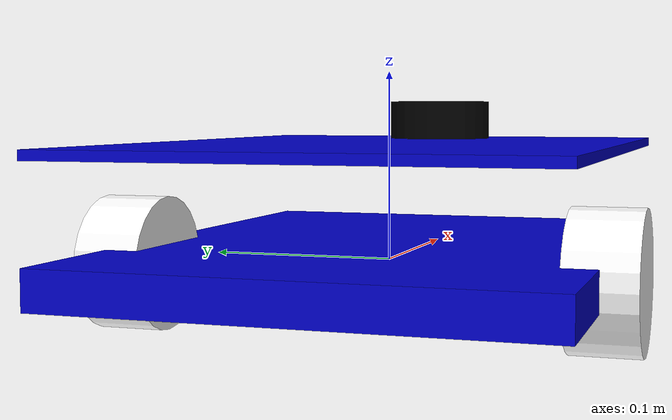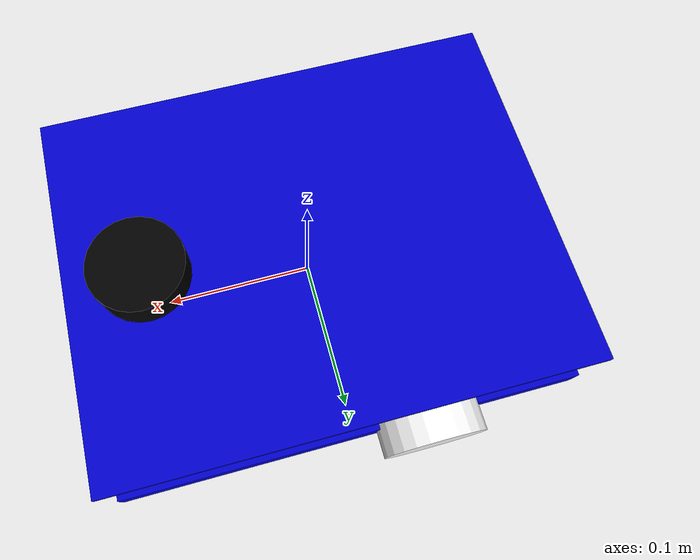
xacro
<?xml version="1.0"?>
<robot name="lamb" xmlns:xacro="http://ros.org/wiki/xacro" >

 <material name="blue">
 	<color rgba="0 0 0.8 1"/>
 </material>

 <material name="white">
	 <color rgba="1 1 1 1"/>
 </material>

 <xacro:property name="m" value="2" />
 <xacro:property name="l1" value="0.31" />
 <xacro:property name="b1" value="0.245" />
 <xacro:property name="h1" value="0.02" />

 <xacro:property name="r2" value="0.017" />

	<link name="base_link">
		<visual>
			<origin rpy="0 0 0" xyz="0 0 0"/>
			<geometry>
				<box size="${l1} ${b1} ${h1}"/>
			</geometry>
			<material name="blue"/>

		</visual>

		<visual>
			<origin rpy="0 0 0" xyz="0 0 0.06"/>
			<geometry>
				<box size="${l1} ${b1} 0.005"/>
			</geometry>
			<material name="blue"/>

		</visual>

		<collision name="collision_chassis">
			<geometry>
				<box size="${l1} ${b1} ${h1}"/>
			</geometry>
		</collision>

		<inertial>
			<mass value="${m}"/>
			<origin rpy="0 0 0" xyz="0 0 0"/>
			<inertia ixx="${m*h1*b1/12.0}" ixy="0" ixz="0" iyy="${m*l1*h1/12.0}" iyz="0" izz="${m*l1*b1/12.0}"/>
		</inertial>

		<!-- caster wheel-->
		<visual>
			<origin rpy="0 0 0" xyz="${l1/2-r2} 0 -${r2}"/>
			<geometry>
				<sphere radius="${r2}"/>
			</geometry>
		</visual>

		<collision name="caster_front_collision">
			<origin rpy="0 0 0" xyz="${l1/2-r2} 0 -${r2}"/>
			<geometry>
				<sphere radius="${r2}"/>
			</geometry>
			<surface>
				<friction>
					<ode>
						<mu>0</mu>
						<mu2>0</mu2>
						<slip1>1.0</slip1>
						<slip2>1.0</slip2>
					</ode>
				</friction>
			</surface>
		</collision>
	</link>

 <xacro:property name="l3" value="0.035" />
 <xacro:property name="r3" value="0.035" />
 <xacro:property name="m3" value="0.2" />

	<link name="right_wheel">
		<visual>
			<origin rpy="0 1.5707 1.5707" xyz="0 0 0"/>
			<geometry>
					<cylinder radius="${r3}" length="${l3}" />
			</geometry>
			<material name="white"/>
		</visual>

		<collision name="collision_right_wheel">
		<origin rpy="0 1.5707 1.5707" xyz="0 0 0"/>
			<geometry>
				<cylinder radius="${r3}" length="${l3}" />
			</geometry>
		</collision>

		<inertial>
			<mass value="${m3}"/>
			<origin rpy="0 1.5707 1.5707" xyz="0 0 0"/>
			<inertia ixx="${m3*((3*r3*r3)+(l3*l3))/12.0}" ixy="0" ixz="0" iyy="${m3*((3*r3*r3)+(l3*l3))/12.0}" iyz="0" izz="${(m3*r3*r3)/2.0}"/>
		</inertial>
	</link>

	<joint name="joint_right_wheel_chassis" type="continuous">
		<origin rpy="0 0 0" xyz="-0.05 -${b1/2} 0"/>
		<child link="right_wheel"/>
		<parent link="base_link"/>
		<axis xyz="0 1 0"/>
		<limit effort="10000" velocity="1000"/>
		<joint_properties damping="1.0" friction="1.0"/>
	</joint>

	<link name="left_wheel">
		<visual>
			<origin rpy="0 1.5707 1.5707" xyz="0 0 0"/>
			<geometry>
					<cylinder radius="${r3}" length="${l3}" />
			</geometry>
			<material name="white"/>
		</visual>

		<collision name="collision_left_wheel">
		<origin rpy="0 1.5707 1.5707" xyz="0 0 0"/>
			<geometry>
				<cylinder radius="${r3}" length="${l3}" />
			</geometry>
		</collision>

		<inertial>
			<mass value="${m3}"/>
			<origin rpy="0 1.5707 1.5707" xyz="0 0 0"/>
			<inertia ixx="${m3*((3*r3*r3)+(l3*l3))/12.0}" ixy="0" ixz="0" iyy="${m3*((3*r3*r3)+(l3*l3))/12.0}" iyz="0" izz="${(m3*r3*r3)/2.0}"/>
		</inertial>
	</link>

	<joint name="joint_left_wheel_chassis" type="continuous">
		<origin rpy="0 0 0" xyz="-0.05 ${b1/2} 0"/>
		<child link="left_wheel"/>
		<parent link="base_link"/>
		<axis xyz="0 1 0"/>
		<limit effort="10000" velocity="1000"/>
		<joint_properties damping="1.0" friction="1.0"/>
	</joint>

 <link name="laser">
    <visual>
      <geometry>
        <cylinder length="0.03" radius="0.03"/>
      </geometry>
      <origin rpy="0 0 0" xyz="0 0 0"/>
      <material name="black">
        <color rgba="0 0 0 1"/>
      </material>
    </visual>
  </link>

  <joint name="base_to_laser" type="fixed">
    <parent link="base_link"/>
    <child link="laser"/>
    <origin xyz="0.105 0 0.07" rpy="0 0 0"/>
  </joint>

<xacro:include filename="$(find lamb_sim)/urdf/gazebo_plugins.urdf.xacro" />

</robot>
